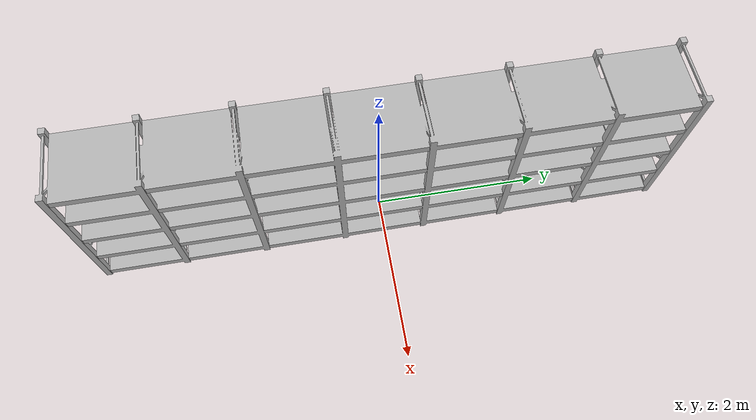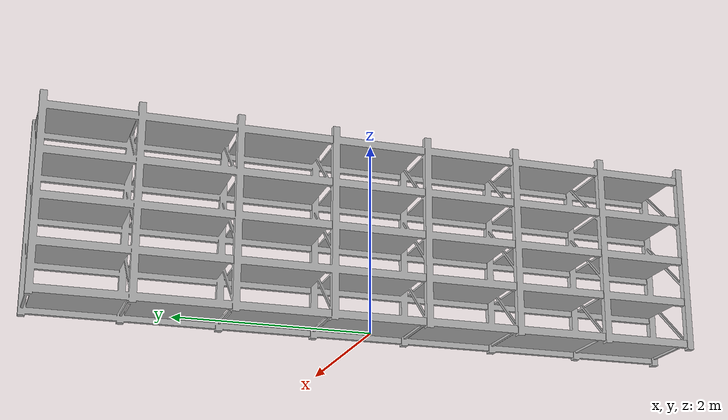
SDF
<?xml version="1.0"?>
<sdf version="1.6">
  <model name="warehouse_rack_5lvl_7bay">
    <static>true</static>
    <link name="link">
      <collision name="shelf_0">
        <pose>0 0 0.09 0 0 0</pose>
        <geometry><box><size>0.83 6.8 0.02</size></box></geometry>
      </collision>
      <collision name="shelf_1">
        <pose>0 0 0.54 0 0 0</pose>
        <geometry><box><size>0.83 6.8 0.02</size></box></geometry>
      </collision>
      <collision name="shelf_2">
        <pose>0 0 0.99 0 0 0</pose>
        <geometry><box><size>0.83 6.8 0.02</size></box></geometry>
      </collision>
      <collision name="shelf_3">
        <pose>0 0 1.44 0 0 0</pose>
        <geometry><box><size>0.83 6.8 0.02</size></box></geometry>
      </collision>
      <collision name="shelf_4">
        <pose>0 0 1.89 0 0 0</pose>
        <geometry><box><size>0.83 6.8 0.02</size></box></geometry>
      </collision>
      <collision name="post_0_0">
        <pose>-0.38 -3.365 1 0 0 0</pose>
        <geometry><box><size>0.07 0.07 2</size></box></geometry>
      </collision>
      <collision name="post_0_1">
        <pose>0.38 -3.365 1 0 0 0</pose>
        <geometry><box><size>0.07 0.07 2</size></box></geometry>
      </collision>
      <collision name="post_1_0">
        <pose>-0.38 -2.4286 1 0 0 0</pose>
        <geometry><box><size>0.07 0.07 2</size></box></geometry>
      </collision>
      <collision name="post_1_1">
        <pose>0.38 -2.4286 1 0 0 0</pose>
        <geometry><box><size>0.07 0.07 2</size></box></geometry>
      </collision>
      <collision name="post_2_0">
        <pose>-0.38 -1.4571 1 0 0 0</pose>
        <geometry><box><size>0.07 0.07 2</size></box></geometry>
      </collision>
      <collision name="post_2_1">
        <pose>0.38 -1.4571 1 0 0 0</pose>
        <geometry><box><size>0.07 0.07 2</size></box></geometry>
      </collision>
      <collision name="post_3_0">
        <pose>-0.38 -0.48571 1 0 0 0</pose>
        <geometry><box><size>0.07 0.07 2</size></box></geometry>
      </collision>
      <collision name="post_3_1">
        <pose>0.38 -0.48571 1 0 0 0</pose>
        <geometry><box><size>0.07 0.07 2</size></box></geometry>
      </collision>
      <collision name="post_4_0">
        <pose>-0.38 0.48571 1 0 0 0</pose>
        <geometry><box><size>0.07 0.07 2</size></box></geometry>
      </collision>
      <collision name="post_4_1">
        <pose>0.38 0.48571 1 0 0 0</pose>
        <geometry><box><size>0.07 0.07 2</size></box></geometry>
      </collision>
      <collision name="post_5_0">
        <pose>-0.38 1.4571 1 0 0 0</pose>
        <geometry><box><size>0.07 0.07 2</size></box></geometry>
      </collision>
      <collision name="post_5_1">
        <pose>0.38 1.4571 1 0 0 0</pose>
        <geometry><box><size>0.07 0.07 2</size></box></geometry>
      </collision>
      <collision name="post_6_0">
        <pose>-0.38 2.4286 1 0 0 0</pose>
        <geometry><box><size>0.07 0.07 2</size></box></geometry>
      </collision>
      <collision name="post_6_1">
        <pose>0.38 2.4286 1 0 0 0</pose>
        <geometry><box><size>0.07 0.07 2</size></box></geometry>
      </collision>
      <collision name="post_7_0">
        <pose>-0.38 3.365 1 0 0 0</pose>
        <geometry><box><size>0.07 0.07 2</size></box></geometry>
      </collision>
      <collision name="post_7_1">
        <pose>0.38 3.365 1 0 0 0</pose>
        <geometry><box><size>0.07 0.07 2</size></box></geometry>
      </collision>
      <visual name="visual">
        <cast_shadows>false</cast_shadows>
        <geometry><mesh><uri>model://warehouse_rack_5lvl_7bay/meshes/mesh.dae</uri></mesh></geometry>
      </visual>
    </link>
  </model>
</sdf>
